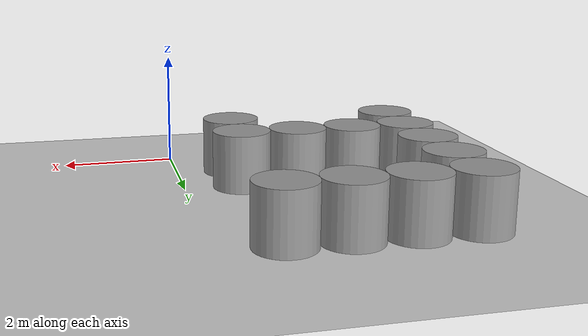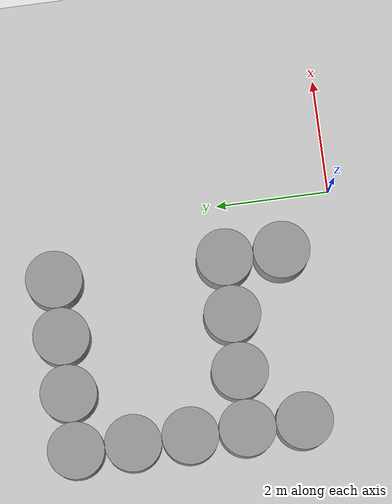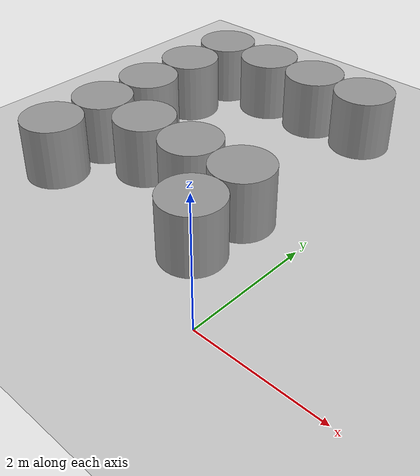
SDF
<sdf version="1.7">
 <world name="default">
  <model name="ground_plane">
   <static>1</static>
   <link name="link">
    <collision name="collision">
     <geometry><plane><normal>0 0 1</normal><size>100 100</size></plane></geometry>
     <surface>
      <contact><collide_bitmask>65535</collide_bitmask></contact>
      <friction><ode><mu>100</mu><mu2>50</mu2></ode></friction>
     </surface>
    </collision>
    <visual name="visual">
     <cast_shadows>0</cast_shadows>
     <geometry><plane><normal>0 0 1</normal><size>100 100</size></plane></geometry>
     <material>
      <script><uri>file://media/materials/scripts/gazebo.material</uri><name>Gazebo/Grey</name></script>
     </material>
    </visual>
   </link>
  </model>
  <model name="cylinder_1m">
   <model name="cylinder_1m">
    <link name="link_0">
     <inertial>
      <mass>1</mass>
      <inertia>
       <ixx>0.166667</ixx>
       <ixy>0</ixy>
       <ixz>0</ixz>
       <iyy>0.166667</iyy>
       <iyz>0</iyz>
       <izz>0.166667</izz>
      </inertia>
     </inertial>
     <pose>0 0 -0 1.5708 -0 0</pose>
     <visual name="visual">
      <geometry>
       <mesh>
        <uri>/home/leesirius/workbench_ws/src/tb3_custom_worlds/custom_models/cylinder_1m.obj</uri>
        <scale>1 1 1</scale>
       </mesh>
      </geometry>
      <material>
       <lighting>1</lighting>
       <script><uri>file://media/materials/scripts/gazebo.material</uri><name>Gazebo/Grey</name></script>
       <shader type="pixel"/>
      </material>
     </visual>
     <collision name="collision">
      <geometry>
       <mesh>
        <uri>/home/leesirius/workbench_ws/src/tb3_custom_worlds/custom_models/cylinder_1m.obj</uri>
        <scale>1 1 1</scale>
       </mesh>
      </geometry>
      <surface>
       <friction>
        <ode><mu>1</mu><mu2>1</mu2><fdir1>0 0 0</fdir1><slip1>0</slip1><slip2>0</slip2></ode>
        <torsional>
         <coefficient>1</coefficient>
         <patch_radius>0</patch_radius>
         <surface_radius>0</surface_radius>
         <use_patch_radius>1</use_patch_radius>
         <ode><slip>0</slip></ode>
        </torsional>
       </friction>
       <bounce><restitution_coefficient>0</restitution_coefficient><threshold>1e+06</threshold></bounce>
       <contact>
        <collide_without_contact>0</collide_without_contact>
        <collide_without_contact_bitmask>1</collide_without_contact_bitmask>
        <collide_bitmask>1</collide_bitmask>
        <ode>
         <soft_cfm>0</soft_cfm>
         <soft_erp>0.2</soft_erp>
         <kp>1e+13</kp>
         <kd>1</kd>
         <max_vel>0.01</max_vel>
         <min_depth>0</min_depth>
        </ode>
        <bullet>
         <split_impulse>1</split_impulse>
         <split_impulse_penetration_threshold>-0.01</split_impulse_penetration_threshold>
         <soft_cfm>0</soft_cfm>
         <soft_erp>0.2</soft_erp>
         <kp>1e+13</kp>
         <kd>1</kd>
        </bullet>
       </contact>
      </surface>
     </collision>
    </link>
    <static>0</static>
    <pose>0 0 4e-06 0 -0 0</pose>
   </model>
   <static>1</static>
   <pose>-3.99998 1.99999 0.499995 -0 1e-06 0.000155</pose>
  </model>
  <model name="cylinder_1m_0">
   <model name="cylinder_1m">
    <link name="link_0">
     <inertial>
      <mass>1</mass>
      <inertia>
       <ixx>0.166667</ixx>
       <ixy>0</ixy>
       <ixz>0</ixz>
       <iyy>0.166667</iyy>
       <iyz>0</iyz>
       <izz>0.166667</izz>
      </inertia>
     </inertial>
     <pose>0 0 -0 1.5708 -0 0</pose>
     <visual name="visual">
      <geometry>
       <mesh>
        <uri>/home/leesirius/workbench_ws/src/tb3_custom_worlds/custom_models/cylinder_1m.obj</uri>
        <scale>1 1 1</scale>
       </mesh>
      </geometry>
      <material>
       <lighting>1</lighting>
       <script><uri>file://media/materials/scripts/gazebo.material</uri><name>Gazebo/Grey</name></script>
       <shader type="pixel"/>
      </material>
     </visual>
     <collision name="collision">
      <geometry>
       <mesh>
        <uri>/home/leesirius/workbench_ws/src/tb3_custom_worlds/custom_models/cylinder_1m.obj</uri>
        <scale>1 1 1</scale>
       </mesh>
      </geometry>
      <surface>
       <friction>
        <ode><mu>1</mu><mu2>1</mu2><fdir1>0 0 0</fdir1><slip1>0</slip1><slip2>0</slip2></ode>
        <torsional>
         <coefficient>1</coefficient>
         <patch_radius>0</patch_radius>
         <surface_radius>0</surface_radius>
         <use_patch_radius>1</use_patch_radius>
         <ode><slip>0</slip></ode>
        </torsional>
       </friction>
       <bounce><restitution_coefficient>0</restitution_coefficient><threshold>1e+06</threshold></bounce>
       <contact>
        <collide_without_contact>0</collide_without_contact>
        <collide_without_contact_bitmask>1</collide_without_contact_bitmask>
        <collide_bitmask>1</collide_bitmask>
        <ode>
         <soft_cfm>0</soft_cfm>
         <soft_erp>0.2</soft_erp>
         <kp>1e+13</kp>
         <kd>1</kd>
         <max_vel>0.01</max_vel>
         <min_depth>0</min_depth>
        </ode>
        <bullet>
         <split_impulse>1</split_impulse>
         <split_impulse_penetration_threshold>-0.01</split_impulse_penetration_threshold>
         <soft_cfm>0</soft_cfm>
         <soft_erp>0.2</soft_erp>
         <kp>1e+13</kp>
         <kd>1</kd>
        </bullet>
       </contact>
      </surface>
     </collision>
    </link>
    <static>0</static>
    <pose>0 0 4e-06 0 -0 0</pose>
   </model>
   <static>1</static>
   <pose>-3.99996 2.99999 0.499995 -1e-06 -0 0.000107</pose>
  </model>
  <model name="cylinder_1m_1">
   <model name="cylinder_1m">
    <link name="link_0">
     <inertial>
      <mass>1</mass>
      <inertia>
       <ixx>0.166667</ixx>
       <ixy>0</ixy>
       <ixz>0</ixz>
       <iyy>0.166667</iyy>
       <iyz>0</iyz>
       <izz>0.166667</izz>
      </inertia>
     </inertial>
     <pose>0 0 -0 1.5708 -0 0</pose>
     <visual name="visual">
      <geometry>
       <mesh>
        <uri>/home/leesirius/workbench_ws/src/tb3_custom_worlds/custom_models/cylinder_1m.obj</uri>
        <scale>1 1 1</scale>
       </mesh>
      </geometry>
      <material>
       <lighting>1</lighting>
       <script><uri>file://media/materials/scripts/gazebo.material</uri><name>Gazebo/Grey</name></script>
       <shader type="pixel"/>
      </material>
     </visual>
     <collision name="collision">
      <geometry>
       <mesh>
        <uri>/home/leesirius/workbench_ws/src/tb3_custom_worlds/custom_models/cylinder_1m.obj</uri>
        <scale>1 1 1</scale>
       </mesh>
      </geometry>
      <surface>
       <friction>
        <ode><mu>1</mu><mu2>1</mu2><fdir1>0 0 0</fdir1><slip1>0</slip1><slip2>0</slip2></ode>
        <torsional>
         <coefficient>1</coefficient>
         <patch_radius>0</patch_radius>
         <surface_radius>0</surface_radius>
         <use_patch_radius>1</use_patch_radius>
         <ode><slip>0</slip></ode>
        </torsional>
       </friction>
       <bounce><restitution_coefficient>0</restitution_coefficient><threshold>1e+06</threshold></bounce>
       <contact>
        <collide_without_contact>0</collide_without_contact>
        <collide_without_contact_bitmask>1</collide_without_contact_bitmask>
        <collide_bitmask>1</collide_bitmask>
        <ode>
         <soft_cfm>0</soft_cfm>
         <soft_erp>0.2</soft_erp>
         <kp>1e+13</kp>
         <kd>1</kd>
         <max_vel>0.01</max_vel>
         <min_depth>0</min_depth>
        </ode>
        <bullet>
         <split_impulse>1</split_impulse>
         <split_impulse_penetration_threshold>-0.01</split_impulse_penetration_threshold>
         <soft_cfm>0</soft_cfm>
         <soft_erp>0.2</soft_erp>
         <kp>1e+13</kp>
         <kd>1</kd>
        </bullet>
       </contact>
      </surface>
     </collision>
    </link>
    <static>0</static>
    <pose>0 0 4e-06 0 -0 0</pose>
   </model>
   <static>1</static>
   <pose>-3.99996 3.99999 0.499996 -2e-06 1e-06 0.000111</pose>
  </model>
  <model name="cylinder_1m_2">
   <model name="cylinder_1m">
    <link name="link_0">
     <inertial>
      <mass>1</mass>
      <inertia>
       <ixx>0.166667</ixx>
       <ixy>0</ixy>
       <ixz>0</ixz>
       <iyy>0.166667</iyy>
       <iyz>0</iyz>
       <izz>0.166667</izz>
      </inertia>
     </inertial>
     <pose>0 0 -0 1.5708 -0 0</pose>
     <visual name="visual">
      <geometry>
       <mesh>
        <uri>/home/leesirius/workbench_ws/src/tb3_custom_worlds/custom_models/cylinder_1m.obj</uri>
        <scale>1 1 1</scale>
       </mesh>
      </geometry>
      <material>
       <lighting>1</lighting>
       <script><uri>file://media/materials/scripts/gazebo.material</uri><name>Gazebo/Grey</name></script>
       <shader type="pixel"/>
      </material>
     </visual>
     <collision name="collision">
      <geometry>
       <mesh>
        <uri>/home/leesirius/workbench_ws/src/tb3_custom_worlds/custom_models/cylinder_1m.obj</uri>
        <scale>1 1 1</scale>
       </mesh>
      </geometry>
      <surface>
       <friction>
        <ode><mu>1</mu><mu2>1</mu2><fdir1>0 0 0</fdir1><slip1>0</slip1><slip2>0</slip2></ode>
        <torsional>
         <coefficient>1</coefficient>
         <patch_radius>0</patch_radius>
         <surface_radius>0</surface_radius>
         <use_patch_radius>1</use_patch_radius>
         <ode><slip>0</slip></ode>
        </torsional>
       </friction>
       <bounce><restitution_coefficient>0</restitution_coefficient><threshold>1e+06</threshold></bounce>
       <contact>
        <collide_without_contact>0</collide_without_contact>
        <collide_without_contact_bitmask>1</collide_without_contact_bitmask>
        <collide_bitmask>1</collide_bitmask>
        <ode>
         <soft_cfm>0</soft_cfm>
         <soft_erp>0.2</soft_erp>
         <kp>1e+13</kp>
         <kd>1</kd>
         <max_vel>0.01</max_vel>
         <min_depth>0</min_depth>
        </ode>
        <bullet>
         <split_impulse>1</split_impulse>
         <split_impulse_penetration_threshold>-0.01</split_impulse_penetration_threshold>
         <soft_cfm>0</soft_cfm>
         <soft_erp>0.2</soft_erp>
         <kp>1e+13</kp>
         <kd>1</kd>
        </bullet>
       </contact>
      </surface>
     </collision>
    </link>
    <static>0</static>
    <pose>0 0 4e-06 0 -0 0</pose>
   </model>
   <static>1</static>
   <pose>-3.99996 4.99999 0.499993 -5e-06 -7e-06 0.000109</pose>
  </model>
  <model name="cylinder_1m_2_clone">
   <model name="cylinder_1m">
    <link name="link_0">
     <inertial>
      <mass>1</mass>
      <inertia>
       <ixx>0.166667</ixx>
       <ixy>0</ixy>
       <ixz>0</ixz>
       <iyy>0.166667</iyy>
       <iyz>0</iyz>
       <izz>0.166667</izz>
      </inertia>
     </inertial>
     <pose>0 0 -0 1.5708 -0 0</pose>
     <visual name="visual">
      <geometry>
       <mesh>
        <uri>/home/leesirius/workbench_ws/src/tb3_custom_worlds/custom_models/cylinder_1m.obj</uri>
        <scale>1 1 1</scale>
       </mesh>
      </geometry>
      <material>
       <lighting>1</lighting>
       <script><uri>file://media/materials/scripts/gazebo.material</uri><name>Gazebo/Grey</name></script>
       <shader type="pixel"/>
      </material>
     </visual>
     <collision name="collision">
      <geometry>
       <mesh>
        <uri>/home/leesirius/workbench_ws/src/tb3_custom_worlds/custom_models/cylinder_1m.obj</uri>
        <scale>1 1 1</scale>
       </mesh>
      </geometry>
      <surface>
       <friction>
        <ode><mu>1</mu><mu2>1</mu2><fdir1>0 0 0</fdir1><slip1>0</slip1><slip2>0</slip2></ode>
        <torsional>
         <coefficient>1</coefficient>
         <patch_radius>0</patch_radius>
         <surface_radius>0</surface_radius>
         <use_patch_radius>1</use_patch_radius>
         <ode><slip>0</slip></ode>
        </torsional>
       </friction>
       <bounce><restitution_coefficient>0</restitution_coefficient><threshold>1e+06</threshold></bounce>
       <contact>
        <collide_without_contact>0</collide_without_contact>
        <collide_without_contact_bitmask>1</collide_without_contact_bitmask>
        <collide_bitmask>1</collide_bitmask>
        <ode>
         <soft_cfm>0</soft_cfm>
         <soft_erp>0.2</soft_erp>
         <kp>1e+13</kp>
         <kd>1</kd>
         <max_vel>0.01</max_vel>
         <min_depth>0</min_depth>
        </ode>
        <bullet>
         <split_impulse>1</split_impulse>
         <split_impulse_penetration_threshold>-0.01</split_impulse_penetration_threshold>
         <soft_cfm>0</soft_cfm>
         <soft_erp>0.2</soft_erp>
         <kp>1e+13</kp>
         <kd>1</kd>
        </bullet>
       </contact>
      </surface>
     </collision>
    </link>
    <static>0</static>
    <pose>0 0 4e-06 0 -0 0</pose>
   </model>
   <static>1</static>
   <pose>-2.99997 4.99999 0.499996 -5e-06 -3e-06 0.000138</pose>
  </model>
  <model name="cylinder_1m_2_clone_0">
   <model name="cylinder_1m">
    <link name="link_0">
     <inertial>
      <mass>1</mass>
      <inertia>
       <ixx>0.166667</ixx>
       <ixy>0</ixy>
       <ixz>0</ixz>
       <iyy>0.166667</iyy>
       <iyz>0</iyz>
       <izz>0.166667</izz>
      </inertia>
     </inertial>
     <pose>0 0 -0 1.5708 -0 0</pose>
     <visual name="visual">
      <geometry>
       <mesh>
        <uri>/home/leesirius/workbench_ws/src/tb3_custom_worlds/custom_models/cylinder_1m.obj</uri>
        <scale>1 1 1</scale>
       </mesh>
      </geometry>
      <material>
       <lighting>1</lighting>
       <script><uri>file://media/materials/scripts/gazebo.material</uri><name>Gazebo/Grey</name></script>
       <shader type="pixel"/>
      </material>
     </visual>
     <collision name="collision">
      <geometry>
       <mesh>
        <uri>/home/leesirius/workbench_ws/src/tb3_custom_worlds/custom_models/cylinder_1m.obj</uri>
        <scale>1 1 1</scale>
       </mesh>
      </geometry>
      <surface>
       <friction>
        <ode><mu>1</mu><mu2>1</mu2><fdir1>0 0 0</fdir1><slip1>0</slip1><slip2>0</slip2></ode>
        <torsional>
         <coefficient>1</coefficient>
         <patch_radius>0</patch_radius>
         <surface_radius>0</surface_radius>
         <use_patch_radius>1</use_patch_radius>
         <ode><slip>0</slip></ode>
        </torsional>
       </friction>
       <bounce><restitution_coefficient>0</restitution_coefficient><threshold>1e+06</threshold></bounce>
       <contact>
        <collide_without_contact>0</collide_without_contact>
        <collide_without_contact_bitmask>1</collide_without_contact_bitmask>
        <collide_bitmask>1</collide_bitmask>
        <ode>
         <soft_cfm>0</soft_cfm>
         <soft_erp>0.2</soft_erp>
         <kp>1e+13</kp>
         <kd>1</kd>
         <max_vel>0.01</max_vel>
         <min_depth>0</min_depth>
        </ode>
        <bullet>
         <split_impulse>1</split_impulse>
         <split_impulse_penetration_threshold>-0.01</split_impulse_penetration_threshold>
         <soft_cfm>0</soft_cfm>
         <soft_erp>0.2</soft_erp>
         <kp>1e+13</kp>
         <kd>1</kd>
        </bullet>
       </contact>
      </surface>
     </collision>
    </link>
    <static>0</static>
    <pose>0 0 4e-06 0 -0 0</pose>
   </model>
   <static>1</static>
   <pose>-1.99997 4.99999 0.499996 -5e-06 -3e-06 0.000138</pose>
  </model>
  <model name="cylinder_1m_2_clone_1">
   <model name="cylinder_1m">
    <link name="link_0">
     <inertial>
      <mass>1</mass>
      <inertia>
       <ixx>0.166667</ixx>
       <ixy>0</ixy>
       <ixz>0</ixz>
       <iyy>0.166667</iyy>
       <iyz>0</iyz>
       <izz>0.166667</izz>
      </inertia>
     </inertial>
     <pose>0 0 -0 1.5708 -0 0</pose>
     <visual name="visual">
      <geometry>
       <mesh>
        <uri>/home/leesirius/workbench_ws/src/tb3_custom_worlds/custom_models/cylinder_1m.obj</uri>
        <scale>1 1 1</scale>
       </mesh>
      </geometry>
      <material>
       <lighting>1</lighting>
       <script><uri>file://media/materials/scripts/gazebo.material</uri><name>Gazebo/Grey</name></script>
       <shader type="pixel"/>
      </material>
     </visual>
     <collision name="collision">
      <geometry>
       <mesh>
        <uri>/home/leesirius/workbench_ws/src/tb3_custom_worlds/custom_models/cylinder_1m.obj</uri>
        <scale>1 1 1</scale>
       </mesh>
      </geometry>
      <surface>
       <friction>
        <ode><mu>1</mu><mu2>1</mu2><fdir1>0 0 0</fdir1><slip1>0</slip1><slip2>0</slip2></ode>
        <torsional>
         <coefficient>1</coefficient>
         <patch_radius>0</patch_radius>
         <surface_radius>0</surface_radius>
         <use_patch_radius>1</use_patch_radius>
         <ode><slip>0</slip></ode>
        </torsional>
       </friction>
       <bounce><restitution_coefficient>0</restitution_coefficient><threshold>1e+06</threshold></bounce>
       <contact>
        <collide_without_contact>0</collide_without_contact>
        <collide_without_contact_bitmask>1</collide_without_contact_bitmask>
        <collide_bitmask>1</collide_bitmask>
        <ode>
         <soft_cfm>0</soft_cfm>
         <soft_erp>0.2</soft_erp>
         <kp>1e+13</kp>
         <kd>1</kd>
         <max_vel>0.01</max_vel>
         <min_depth>0</min_depth>
        </ode>
        <bullet>
         <split_impulse>1</split_impulse>
         <split_impulse_penetration_threshold>-0.01</split_impulse_penetration_threshold>
         <soft_cfm>0</soft_cfm>
         <soft_erp>0.2</soft_erp>
         <kp>1e+13</kp>
         <kd>1</kd>
        </bullet>
       </contact>
      </surface>
     </collision>
    </link>
    <static>0</static>
    <pose>0 0 4e-06 0 -0 0</pose>
   </model>
   <static>1</static>
   <pose>-0.999966 4.99999 0.499996 -5e-06 -3e-06 0.000138</pose>
  </model>
  <model name="cylinder_1m_2_clone_3">
   <model name="cylinder_1m">
    <link name="link_0">
     <inertial>
      <mass>1</mass>
      <inertia>
       <ixx>0.166667</ixx>
       <ixy>0</ixy>
       <ixz>0</ixz>
       <iyy>0.166667</iyy>
       <iyz>0</iyz>
       <izz>0.166667</izz>
      </inertia>
     </inertial>
     <pose>0 0 -0 1.5708 -0 0</pose>
     <visual name="visual">
      <geometry>
       <mesh>
        <uri>/home/leesirius/workbench_ws/src/tb3_custom_worlds/custom_models/cylinder_1m.obj</uri>
        <scale>1 1 1</scale>
       </mesh>
      </geometry>
      <material>
       <lighting>1</lighting>
       <script><uri>file://media/materials/scripts/gazebo.material</uri><name>Gazebo/Grey</name></script>
       <shader type="pixel"/>
      </material>
     </visual>
     <collision name="collision">
      <geometry>
       <mesh>
        <uri>/home/leesirius/workbench_ws/src/tb3_custom_worlds/custom_models/cylinder_1m.obj</uri>
        <scale>1 1 1</scale>
       </mesh>
      </geometry>
      <surface>
       <friction>
        <ode><mu>1</mu><mu2>1</mu2><fdir1>0 0 0</fdir1><slip1>0</slip1><slip2>0</slip2></ode>
        <torsional>
         <coefficient>1</coefficient>
         <patch_radius>0</patch_radius>
         <surface_radius>0</surface_radius>
         <use_patch_radius>1</use_patch_radius>
         <ode><slip>0</slip></ode>
        </torsional>
       </friction>
       <bounce><restitution_coefficient>0</restitution_coefficient><threshold>1e+06</threshold></bounce>
       <contact>
        <collide_without_contact>0</collide_without_contact>
        <collide_without_contact_bitmask>1</collide_without_contact_bitmask>
        <collide_bitmask>1</collide_bitmask>
        <ode>
         <soft_cfm>0</soft_cfm>
         <soft_erp>0.2</soft_erp>
         <kp>1e+13</kp>
         <kd>1</kd>
         <max_vel>0.01</max_vel>
         <min_depth>0</min_depth>
        </ode>
        <bullet>
         <split_impulse>1</split_impulse>
         <split_impulse_penetration_threshold>-0.01</split_impulse_penetration_threshold>
         <soft_cfm>0</soft_cfm>
         <soft_erp>0.2</soft_erp>
         <kp>1e+13</kp>
         <kd>1</kd>
        </bullet>
       </contact>
      </surface>
     </collision>
    </link>
    <static>0</static>
    <pose>0 0 4e-06 0 -0 0</pose>
   </model>
   <static>1</static>
   <pose>-2.99997 1.99999 0.499996 -5e-06 -3e-06 0.000138</pose>
  </model>
  <model name="cylinder_1m_2_clone_4">
   <model name="cylinder_1m">
    <link name="link_0">
     <inertial>
      <mass>1</mass>
      <inertia>
       <ixx>0.166667</ixx>
       <ixy>0</ixy>
       <ixz>0</ixz>
       <iyy>0.166667</iyy>
       <iyz>0</iyz>
       <izz>0.166667</izz>
      </inertia>
     </inertial>
     <pose>0 0 -0 1.5708 -0 0</pose>
     <visual name="visual">
      <geometry>
       <mesh>
        <uri>/home/leesirius/workbench_ws/src/tb3_custom_worlds/custom_models/cylinder_1m.obj</uri>
        <scale>1 1 1</scale>
       </mesh>
      </geometry>
      <material>
       <lighting>1</lighting>
       <script><uri>file://media/materials/scripts/gazebo.material</uri><name>Gazebo/Grey</name></script>
       <shader type="pixel"/>
      </material>
     </visual>
     <collision name="collision">
      <geometry>
       <mesh>
        <uri>/home/leesirius/workbench_ws/src/tb3_custom_worlds/custom_models/cylinder_1m.obj</uri>
        <scale>1 1 1</scale>
       </mesh>
      </geometry>
      <surface>
       <friction>
        <ode><mu>1</mu><mu2>1</mu2><fdir1>0 0 0</fdir1><slip1>0</slip1><slip2>0</slip2></ode>
        <torsional>
         <coefficient>1</coefficient>
         <patch_radius>0</patch_radius>
         <surface_radius>0</surface_radius>
         <use_patch_radius>1</use_patch_radius>
         <ode><slip>0</slip></ode>
        </torsional>
       </friction>
       <bounce><restitution_coefficient>0</restitution_coefficient><threshold>1e+06</threshold></bounce>
       <contact>
        <collide_without_contact>0</collide_without_contact>
        <collide_without_contact_bitmask>1</collide_without_contact_bitmask>
        <collide_bitmask>1</collide_bitmask>
        <ode>
         <soft_cfm>0</soft_cfm>
         <soft_erp>0.2</soft_erp>
         <kp>1e+13</kp>
         <kd>1</kd>
         <max_vel>0.01</max_vel>
         <min_depth>0</min_depth>
        </ode>
        <bullet>
         <split_impulse>1</split_impulse>
         <split_impulse_penetration_threshold>-0.01</split_impulse_penetration_threshold>
         <soft_cfm>0</soft_cfm>
         <soft_erp>0.2</soft_erp>
         <kp>1e+13</kp>
         <kd>1</kd>
        </bullet>
       </contact>
      </surface>
     </collision>
    </link>
    <static>0</static>
    <pose>0 0 4e-06 0 -0 0</pose>
   </model>
   <static>1</static>
   <pose>-1.99997 1.99999 0.499996 -5e-06 -3e-06 0.000138</pose>
  </model>
  <model name="cylinder_1m_2_clone_5">
   <model name="cylinder_1m">
    <link name="link_0">
     <inertial>
      <mass>1</mass>
      <inertia>
       <ixx>0.166667</ixx>
       <ixy>0</ixy>
       <ixz>0</ixz>
       <iyy>0.166667</iyy>
       <iyz>0</iyz>
       <izz>0.166667</izz>
      </inertia>
     </inertial>
     <pose>0 0 -0 1.5708 -0 0</pose>
     <visual name="visual">
      <geometry>
       <mesh>
        <uri>/home/leesirius/workbench_ws/src/tb3_custom_worlds/custom_models/cylinder_1m.obj</uri>
        <scale>1 1 1</scale>
       </mesh>
      </geometry>
      <material>
       <lighting>1</lighting>
       <script><uri>file://media/materials/scripts/gazebo.material</uri><name>Gazebo/Grey</name></script>
       <shader type="pixel"/>
      </material>
     </visual>
     <collision name="collision">
      <geometry>
       <mesh>
        <uri>/home/leesirius/workbench_ws/src/tb3_custom_worlds/custom_models/cylinder_1m.obj</uri>
        <scale>1 1 1</scale>
       </mesh>
      </geometry>
      <surface>
       <friction>
        <ode><mu>1</mu><mu2>1</mu2><fdir1>0 0 0</fdir1><slip1>0</slip1><slip2>0</slip2></ode>
        <torsional>
         <coefficient>1</coefficient>
         <patch_radius>0</patch_radius>
         <surface_radius>0</surface_radius>
         <use_patch_radius>1</use_patch_radius>
         <ode><slip>0</slip></ode>
        </torsional>
       </friction>
       <bounce><restitution_coefficient>0</restitution_coefficient><threshold>1e+06</threshold></bounce>
       <contact>
        <collide_without_contact>0</collide_without_contact>
        <collide_without_contact_bitmask>1</collide_without_contact_bitmask>
        <collide_bitmask>1</collide_bitmask>
        <ode>
         <soft_cfm>0</soft_cfm>
         <soft_erp>0.2</soft_erp>
         <kp>1e+13</kp>
         <kd>1</kd>
         <max_vel>0.01</max_vel>
         <min_depth>0</min_depth>
        </ode>
        <bullet>
         <split_impulse>1</split_impulse>
         <split_impulse_penetration_threshold>-0.01</split_impulse_penetration_threshold>
         <soft_cfm>0</soft_cfm>
         <soft_erp>0.2</soft_erp>
         <kp>1e+13</kp>
         <kd>1</kd>
        </bullet>
       </contact>
      </surface>
     </collision>
    </link>
    <static>0</static>
    <pose>0 0 4e-06 0 -0 0</pose>
   </model>
   <static>1</static>
   <pose>-0.999966 1.99999 0.499996 -5e-06 -3e-06 0.000138</pose>
  </model>
  <model name="cylinder_1m_2_clone_6">
   <model name="cylinder_1m">
    <link name="link_0">
     <inertial>
      <mass>1</mass>
      <inertia>
       <ixx>0.166667</ixx>
       <ixy>0</ixy>
       <ixz>0</ixz>
       <iyy>0.166667</iyy>
       <iyz>0</iyz>
       <izz>0.166667</izz>
      </inertia>
     </inertial>
     <pose>0 0 -0 1.5708 -0 0</pose>
     <visual name="visual">
      <geometry>
       <mesh>
        <uri>/home/leesirius/workbench_ws/src/tb3_custom_worlds/custom_models/cylinder_1m.obj</uri>
        <scale>1 1 1</scale>
       </mesh>
      </geometry>
      <material>
       <lighting>1</lighting>
       <script><uri>file://media/materials/scripts/gazebo.material</uri><name>Gazebo/Grey</name></script>
       <shader type="pixel"/>
      </material>
     </visual>
     <collision name="collision">
      <geometry>
       <mesh>
        <uri>/home/leesirius/workbench_ws/src/tb3_custom_worlds/custom_models/cylinder_1m.obj</uri>
        <scale>1 1 1</scale>
       </mesh>
      </geometry>
      <surface>
       <friction>
        <ode><mu>1</mu><mu2>1</mu2><fdir1>0 0 0</fdir1><slip1>0</slip1><slip2>0</slip2></ode>
        <torsional>
         <coefficient>1</coefficient>
         <patch_radius>0</patch_radius>
         <surface_radius>0</surface_radius>
         <use_patch_radius>1</use_patch_radius>
         <ode><slip>0</slip></ode>
        </torsional>
       </friction>
       <bounce><restitution_coefficient>0</restitution_coefficient><threshold>1e+06</threshold></bounce>
       <contact>
        <collide_without_contact>0</collide_without_contact>
        <collide_without_contact_bitmask>1</collide_without_contact_bitmask>
        <collide_bitmask>1</collide_bitmask>
        <ode>
         <soft_cfm>0</soft_cfm>
         <soft_erp>0.2</soft_erp>
         <kp>1e+13</kp>
         <kd>1</kd>
         <max_vel>0.01</max_vel>
         <min_depth>0</min_depth>
        </ode>
        <bullet>
         <split_impulse>1</split_impulse>
         <split_impulse_penetration_threshold>-0.01</split_impulse_penetration_threshold>
         <soft_cfm>0</soft_cfm>
         <soft_erp>0.2</soft_erp>
         <kp>1e+13</kp>
         <kd>1</kd>
        </bullet>
       </contact>
      </surface>
     </collision>
    </link>
    <static>0</static>
    <pose>0 0 4e-06 0 -0 0</pose>
   </model>
   <static>1</static>
   <pose>-0.999966 0.999985 0.499996 -5e-06 -3e-06 0.000138</pose>
  </model>
  <model name="cylinder_1m_2_clone_46">
   <model name="cylinder_1m">
    <link name="link_0">
     <inertial>
      <mass>1</mass>
      <inertia>
       <ixx>0.166667</ixx>
       <ixy>0</ixy>
       <ixz>0</ixz>
       <iyy>0.166667</iyy>
       <iyz>0</iyz>
       <izz>0.166667</izz>
      </inertia>
     </inertial>
     <pose>0 0 -0 1.5708 -0 0</pose>
     <visual name="visual">
      <geometry>
       <mesh>
        <uri>/home/leesirius/workbench_ws/src/tb3_custom_worlds/custom_models/cylinder_1m.obj</uri>
        <scale>1 1 1</scale>
       </mesh>
      </geometry>
      <material>
       <lighting>1</lighting>
       <script><uri>file://media/materials/scripts/gazebo.material</uri><name>Gazebo/Grey</name></script>
       <shader type="pixel"/>
      </material>
     </visual>
     <collision name="collision">
      <geometry>
       <mesh>
        <uri>/home/leesirius/workbench_ws/src/tb3_custom_worlds/custom_models/cylinder_1m.obj</uri>
        <scale>1 1 1</scale>
       </mesh>
      </geometry>
      <surface>
       <friction>
        <ode><mu>1</mu><mu2>1</mu2><fdir1>0 0 0</fdir1><slip1>0</slip1><slip2>0</slip2></ode>
        <torsional>
         <coefficient>1</coefficient>
         <patch_radius>0</patch_radius>
         <surface_radius>0</surface_radius>
         <use_patch_radius>1</use_patch_radius>
         <ode><slip>0</slip></ode>
        </torsional>
       </friction>
       <bounce><restitution_coefficient>0</restitution_coefficient><threshold>1e+06</threshold></bounce>
       <contact>
        <collide_without_contact>0</collide_without_contact>
        <collide_without_contact_bitmask>1</collide_without_contact_bitmask>
        <collide_bitmask>1</collide_bitmask>
        <ode>
         <soft_cfm>0</soft_cfm>
         <soft_erp>0.2</soft_erp>
         <kp>1e+13</kp>
         <kd>1</kd>
         <max_vel>0.01</max_vel>
         <min_depth>0</min_depth>
        </ode>
        <bullet>
         <split_impulse>1</split_impulse>
         <split_impulse_penetration_threshold>-0.01</split_impulse_penetration_threshold>
         <soft_cfm>0</soft_cfm>
         <soft_erp>0.2</soft_erp>
         <kp>1e+13</kp>
         <kd>1</kd>
        </bullet>
       </contact>
      </surface>
     </collision>
    </link>
    <static>0</static>
    <pose>0 0 4e-06 0 -0 0</pose>
   </model>
   <static>1</static>
   <pose>-3.99998 0.999986 0.499995 -5e-06 -2e-06 0.00014</pose>
  </model>
 </world>
</sdf>
